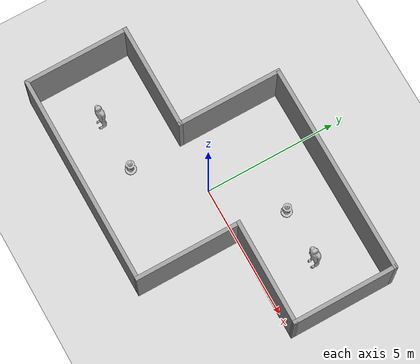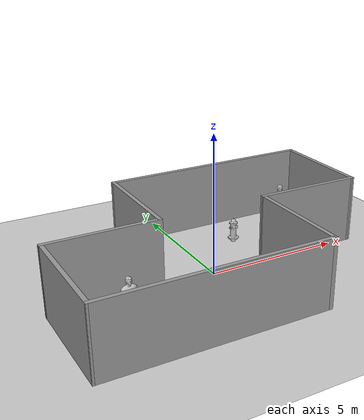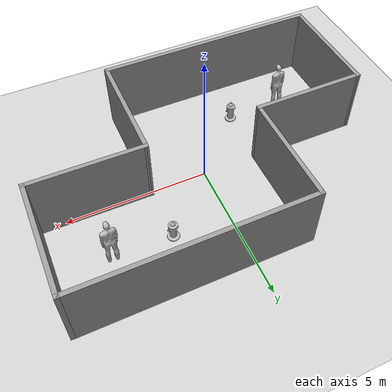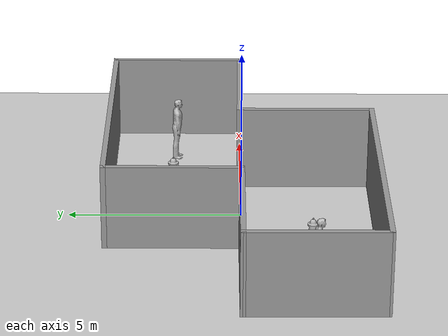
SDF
<sdf version="1.6">
 <world name="default">
  <light name="sun" type="directional">
   <pose>0 0 10 0 -0 0</pose>
   <diffuse>0.8 0.8 0.8 1</diffuse>
   <specular>0.1 0.1 0.1 1</specular>
   <attenuation>
    <range>1000</range>
    <constant>0.9</constant>
    <linear>0.01</linear>
    <quadratic>0.001</quadratic>
   </attenuation>
   <direction>-0.5 0.5 -1</direction>
  </light>
  <model name="ground_plane">
   <static>1</static>
   <link name="link">
    <collision name="collision">
     <geometry><plane><normal>0 0 1</normal><size>100 100</size></plane></geometry>
     <surface><friction><ode><mu>100</mu><mu2>50</mu2></ode></friction></surface>
    </collision>
    <visual name="visual">
     <cast_shadows>0</cast_shadows>
     <geometry><plane><normal>0 0 1</normal><size>100 100</size></plane></geometry>
     <material>
      <script><uri>file://media/materials/scripts/gazebo.material</uri><name>Gazebo/Grey</name></script>
     </material>
    </visual>
   </link>
  </model>
  <gravity>0 0 -9.8</gravity>
  <magnetic_field>6e-06 2.3e-05 -4.2e-05</magnetic_field>
  <atmosphere type="adiabatic"/>
  <physics name="default_physics" default="0" type="ode">
   <max_step_size>0.001</max_step_size>
   <real_time_factor>1</real_time_factor>
   <real_time_update_rate>1000</real_time_update_rate>
  </physics>
  <scene><ambient>0.4 0.4 0.4 1</ambient><background>0.7 0.7 0.7 1</background><shadows>1</shadows></scene>
  <spherical_coordinates>
   <surface_model>EARTH_WGS84</surface_model>
   <latitude_deg>0</latitude_deg>
   <longitude_deg>0</longitude_deg>
   <elevation>0</elevation>
   <heading_deg>0</heading_deg>
  </spherical_coordinates>
  <model name="z_room">
   <link name="Wall_0">
    <collision name="Wall_0_Collision">
     <geometry><box><size>8 0.15 2.5</size></box></geometry>
     <pose>0 0 1.25 0 -0 0</pose>
    </collision>
    <visual name="Wall_0_Visual">
     <pose>0 0 1.25 0 -0 0</pose>
     <geometry><box><size>8 0.15 2.5</size></box></geometry>
     <material>
      <script><uri>file://media/materials/scripts/gazebo.material</uri><name>Gazebo/Grey</name></script>
      <ambient>1 1 1 1</ambient>
     </material>
    </visual>
    <pose>-1.91186 -3.84974 0 0 -0 0</pose>
   </link>
   <link name="Wall_1">
    <collision name="Wall_1_Collision">
     <geometry><box><size>4.04023 0.15 2.5</size></box></geometry>
     <pose>0 0 1.25 0 -0 0</pose>
    </collision>
    <visual name="Wall_1_Visual">
     <pose>0 0 1.25 0 -0 0</pose>
     <geometry><box><size>4.04023 0.15 2.5</size></box></geometry>
     <material>
      <script><uri>file://media/materials/scripts/gazebo.material</uri><name>Gazebo/Grey</name></script>
      <ambient>1 1 1 1</ambient>
     </material>
    </visual>
    <pose>2.01314 -1.90463 0 0 -0 1.5708</pose>
   </link>
   <link name="Wall_10">
    <collision name="Wall_10_Collision">
     <geometry><box><size>4.02645 0.15 2.5</size></box></geometry>
     <pose>0 0 1.25 0 -0 0</pose>
    </collision>
    <visual name="Wall_10_Visual">
     <pose>0 0 1.25 0 -0 0</pose>
     <geometry><box><size>4.02645 0.15 2.5</size></box></geometry>
     <material>
      <script><uri>file://media/materials/scripts/gazebo.material</uri><name>Gazebo/Grey</name></script>
      <ambient>1 1 1 1</ambient>
     </material>
    </visual>
    <pose>-3.92508 0.000257 0 0 -0 3.14159</pose>
   </link>
   <link name="Wall_13">
    <collision name="Wall_13_Collision">
     <geometry><box><size>4.00009 0.15 2.5</size></box></geometry>
     <pose>0 0 1.25 0 -0 0</pose>
    </collision>
    <visual name="Wall_13_Visual">
     <pose>0 0 1.25 0 -0 0</pose>
     <geometry><box><size>4.00009 0.15 2.5</size></box></geometry>
     <material>
      <script><uri>file://media/materials/scripts/gazebo.material</uri><name>Gazebo/Grey</name></script>
      <ambient>1 1 1 1</ambient>
     </material>
    </visual>
    <pose>-5.85008 -1.92474 0 0 0 -1.56393</pose>
   </link>
   <link name="Wall_3">
    <collision name="Wall_3_Collision">
     <geometry><box><size>4 0.15 2.5</size></box></geometry>
     <pose>0 0 1.25 0 -0 0</pose>
    </collision>
    <visual name="Wall_3_Visual">
     <pose>0 0 1.25 0 -0 0</pose>
     <geometry><box><size>4 0.15 2.5</size></box></geometry>
     <material>
      <script><uri>file://media/materials/scripts/gazebo.material</uri><name>Gazebo/Grey</name></script>
      <ambient>1 1 1 1</ambient>
     </material>
    </visual>
    <pose>3.93815 0.02037 0 0 0 -0.010448</pose>
   </link>
   <link name="Wall_7">
    <collision name="Wall_7_Collision">
     <geometry><box><size>4 0.15 2.5</size></box></geometry>
     <pose>0 0 1.25 0 -0 0</pose>
    </collision>
    <visual name="Wall_7_Visual">
     <pose>0 0 1.25 0 -0 0</pose>
     <geometry><box><size>4 0.15 2.5</size></box></geometry>
     <material>
      <script><uri>file://media/materials/scripts/gazebo.material</uri><name>Gazebo/Grey</name></script>
      <ambient>1 1 1 1</ambient>
     </material>
    </visual>
    <pose>5.86314 1.92526 0 0 -0 1.5708</pose>
   </link>
   <link name="Wall_8">
    <collision name="Wall_8_Collision">
     <geometry><box><size>8 0.15 2.5</size></box></geometry>
     <pose>0 0 1.25 0 -0 0</pose>
    </collision>
    <visual name="Wall_8_Visual">
     <pose>0 0 1.25 0 -0 0</pose>
     <geometry><box><size>8 0.15 2.5</size></box></geometry>
     <material>
      <script><uri>file://media/materials/scripts/gazebo.material</uri><name>Gazebo/Grey</name></script>
      <ambient>1 1 1 1</ambient>
     </material>
    </visual>
    <pose>1.93814 3.85026 0 0 -0 3.14159</pose>
   </link>
   <link name="Wall_9">
    <collision name="Wall_9_Collision">
     <geometry><box><size>4 0.15 2.5</size></box></geometry>
     <pose>0 0 1.25 0 -0 0</pose>
    </collision>
    <visual name="Wall_9_Visual">
     <pose>0 0 1.25 0 -0 0</pose>
     <geometry><box><size>4 0.15 2.5</size></box></geometry>
     <material>
      <script><uri>file://media/materials/scripts/gazebo.material</uri><name>Gazebo/Grey</name></script>
      <ambient>1 1 1 1</ambient>
     </material>
    </visual>
    <pose>-1.98686 1.92526 0 0 0 -1.5708</pose>
   </link>
   <static>1</static>
  </model>
  <model name="person_standing">
   <link name="link">
    <inertial>
     <pose>0 -0.1 0.95 0 -0 0</pose>
     <mass>80</mass>
     <inertia><ixx>24.88</ixx><ixy>0</ixy><ixz>0</ixz><iyy>25.73</iyy><iyz>0</iyz><izz>2.48</izz></inertia>
    </inertial>
    <collision name="bottom">
     <pose>0 -0.1 0.01 0 -0 0</pose>
     <geometry><box><size>0.5 0.35 0.02</size></box></geometry>
    </collision>
    <collision name="person">
     <pose>0 0 0.02 0.04 -0 0</pose>
     <geometry><mesh><uri>model://person_standing/meshes/standing.dae</uri><scale>1 1 1</scale></mesh></geometry>
    </collision>
    <visual name="visual">
     <pose>0 0 0.02 0.04 -0 0</pose>
     <geometry><mesh><uri>model://person_standing/meshes/standing.dae</uri><scale>1 1 1</scale></mesh></geometry>
    </visual>
   </link>
   <pose>4 2 0 0 -0 0</pose>
  </model>
  <model name="fire_hydrant">
   <static>1</static>
   <link name="link">
    <collision name="collision">
     <geometry><mesh><uri>model://fire_hydrant/meshes/fire_hydrant.dae</uri><scale>1 1 1</scale></mesh></geometry>
    </collision>
    <visual name="visual">
     <geometry><mesh><uri>model://fire_hydrant/meshes/fire_hydrant.dae</uri><scale>1 1 1</scale></mesh></geometry>
    </visual>
   </link>
   <pose>2 2 0 0 -0 0</pose>
  </model>
  <model name="fire_hydrant_0">
   <static>1</static>
   <link name="link">
    <collision name="collision">
     <geometry><mesh><uri>model://fire_hydrant/meshes/fire_hydrant.dae</uri><scale>1 1 1</scale></mesh></geometry>
    </collision>
    <visual name="visual">
     <geometry><mesh><uri>model://fire_hydrant/meshes/fire_hydrant.dae</uri><scale>1 1 1</scale></mesh></geometry>
    </visual>
   </link>
   <pose>-2 -2 0 0 -0 0</pose>
  </model>
  <model name="person_standing_0">
   <link name="link">
    <inertial>
     <pose>0 -0.1 0.95 0 -0 0</pose>
     <mass>80</mass>
     <inertia><ixx>24.88</ixx><ixy>0</ixy><ixz>0</ixz><iyy>25.73</iyy><iyz>0</iyz><izz>2.48</izz></inertia>
    </inertial>
    <collision name="bottom">
     <pose>0 -0.1 0.01 0 -0 0</pose>
     <geometry><box><size>0.5 0.35 0.02</size></box></geometry>
    </collision>
    <collision name="person">
     <pose>0 0 0.02 0.04 -0 0</pose>
     <geometry><mesh><uri>model://person_standing/meshes/standing.dae</uri><scale>1 1 1</scale></mesh></geometry>
    </collision>
    <visual name="visual">
     <pose>0 0 0.02 0.04 -0 0</pose>
     <geometry><mesh><uri>model://person_standing/meshes/standing.dae</uri><scale>1 1 1</scale></mesh></geometry>
    </visual>
   </link>
   <pose>-4 -2 0 0 -0 0</pose>
  </model>
 </world>
</sdf>
